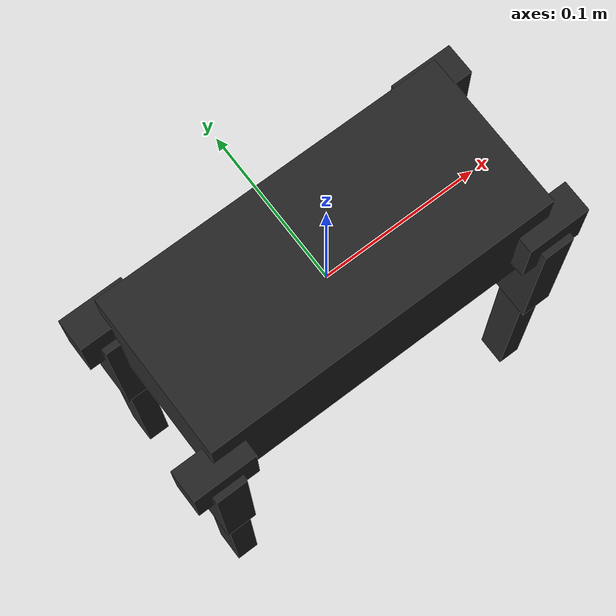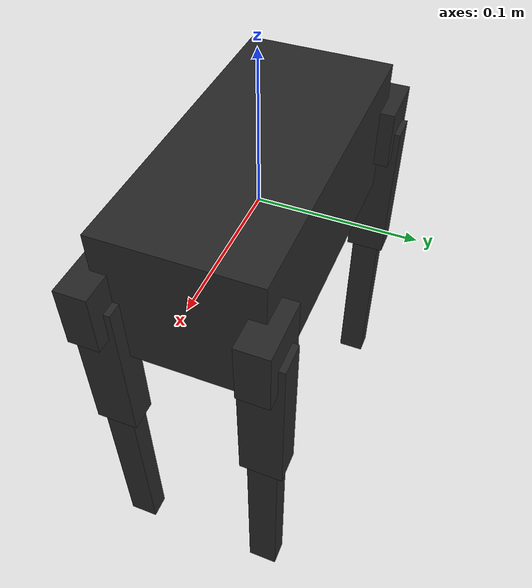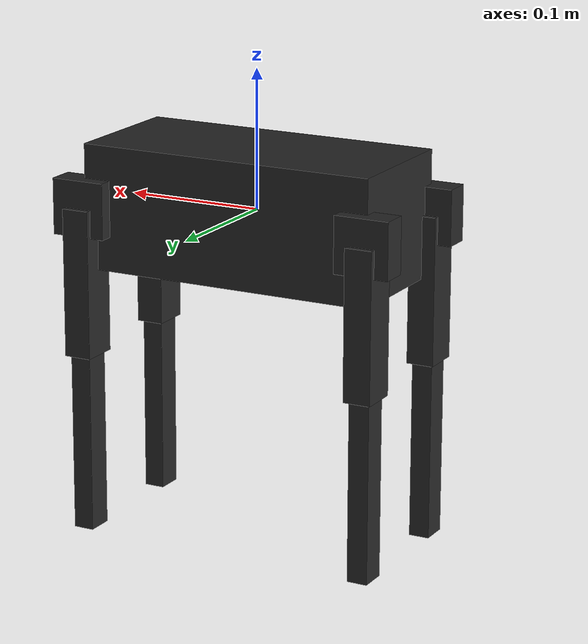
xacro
<?xml version="1.0"?>
<robot name="sih_quadruped" xmlns:xacro="http://ros.org/wiki/xacro">
    <xacro:include filename="$(find sih_quadruped)/urdf/properties.urdf.xacro" />
    <xacro:include filename="$(find sih_quadruped)/urdf/leg.urdf.xacro" />

    <link name="base_link">
        <xacro:box_inertial mass="${base_mass}" x="${base_x_length}" y="${base_y_length}" z="${base_z_length}" />
        <collision>
            <origin xyz="0 0 0" rpy="0 0 0" />
            <geometry><box size="${base_x_length} ${base_y_length} ${base_z_length}" /></geometry>
        </collision>
        <visual>
            <origin xyz="0 0 0" rpy="0 0 0" />
            <geometry><box size="${base_x_length} ${base_y_length} ${base_z_length}" /></geometry>
            <material name="black" />
        </visual>
    </link>
    <gazebo reference="base_link">
        <material>Gazebo/FlatBlack</material>
    </gazebo>

    <xacro:champ_leg leg="lf"/>
    <xacro:champ_leg leg="lh"/>
    <xacro:champ_leg leg="rf"/>
    <xacro:champ_leg leg="rh"/>

    <gazebo>
        <plugin name="p3d_base_controller" filename="libgazebo_ros_p3d.so">
            <ros>
                <argument>odom:=odom/ground_truth</argument>
            </ros>
            <body_name>base_link</body_name>
            <frame_name>world</frame_name>
            <update_rate>50.0</update_rate>
            <xyz_offset>0 0 0</xyz_offset>
            <rpy_offset>0 0 0</rpy_offset>
            <gaussian_noise>0.0</gaussian_noise>
        </plugin>
    </gazebo>

    <gazebo>
        <plugin filename="libgazebo_ros2_control.so" name="gazebo_ros2_control">
            <parameters>$(find sih_quadruped)/config/ros_control/ros_control.yaml</parameters>
        </plugin>
    </gazebo>
</robot>

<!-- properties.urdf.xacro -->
<robot xmlns:xacro="http://ros.org/wiki/xacro">

    <xacro:property name="base_to_hip_x" value="0.110" /> <!-- m, params.py BASE_TO_HIP_X = 110.0mm -->
    <xacro:property name="base_to_hip_y" value="0.050" /> <!-- m, params.py BASE_TO_HIP_Y = 50.0mm -->

    <xacro:property name="hip_to_upper_leg_x" value="0.0" /> <!-- m, PLACEHOLDER (zeroed for IK margin, see above), swap from leg_kinematics.json -->
    <xacro:property name="hip_to_upper_leg_y" value="0.0" /> <!-- m, PLACEHOLDER (zeroed for IK margin, see above), swap from leg_kinematics.json -->

    <xacro:property name="upper_leg_to_lower_leg_y" value="0.0" /> <!-- m, PLACEHOLDER (zeroed for IK margin, see above), swap from leg_kinematics.json -->
    <xacro:property name="upper_leg_to_lower_leg_z" value="0.1075" /> <!-- m, params.py THIGH_LENGTH = 107.5mm (V3 SPEC contract, NOT a placeholder) -->

    <xacro:property name="lower_leg_to_foot_z" value="0.130" /> <!-- m, params.py SHIN_LENGTH = 130.0mm (V3 SPEC contract, NOT a placeholder) -->

    <!-- Masses (draft, per the task spec). -->
    <xacro:property name="base_mass" value="1.45" />       <!-- kg, incl. 4 ab/ad servos, battery, Pi, LiDAR (task spec) -->
    <xacro:property name="hip_mass" value="0.10" />        <!-- kg, per hip/shoulder bracket + ab/ad servo (task spec) -->
    <xacro:property name="upper_leg_mass" value="0.11" />  <!-- kg, per upper leg (thigh) link (task spec) -->
    <xacro:property name="lower_leg_mass" value="0.04" />  <!-- kg, per lower leg (shin) link (task spec) -->

    <xacro:property name="base_x_length" value="0.220" />  <!-- m, 2*base_to_hip_x; footprint spans the 4 hip points -->
    <xacro:property name="base_y_length" value="0.100" />  <!-- m, 2*base_to_hip_y -->
    <xacro:property name="base_z_length" value="0.090" />  <!-- m, draft, within params.py BODY_MAX_BELOW_HIP(35mm)+LEG_MAX_Z(60mm) envelope -->

    <xacro:property name="hip_x_length" value="0.040" />   <!-- m, params.py SERVO_BODY_L (DS3225 case) -->
    <xacro:property name="hip_y_length" value="0.020" />   <!-- m, params.py SERVO_BODY_W (DS3225 case) -->
    <xacro:property name="hip_z_length" value="0.0405" />  <!-- m, params.py SERVO_BODY_H (DS3225 case) -->

    <xacro:property name="upper_leg_x_length" value="0.020" /> <!-- m, draft cross-section depth -->
    <xacro:property name="upper_leg_y_length" value="0.028" /> <!-- m, params.py LEG_W = SERVO_BODY_W(20)+2*WALL(4) -->
    <xacro:property name="upper_leg_z_length" value="${upper_leg_to_lower_leg_z}" /> <!-- m, = THIGH_LENGTH -->

    <xacro:property name="lower_leg_x_length" value="0.015" /> <!-- m, draft cross-section depth (tapers vs. upper leg) -->
    <xacro:property name="lower_leg_y_length" value="0.020" /> <!-- m, draft cross-section width -->
    <xacro:property name="lower_leg_z_length" value="${lower_leg_to_foot_z}" /> <!-- m, = SHIN_LENGTH -->

    <xacro:arg name="leg_effort_limit" default="2.4525" />
    <xacro:property name="leg_joint_effort" value="$(arg leg_effort_limit)" /> <!-- N.m, see above -->
    <xacro:property name="leg_joint_velocity" value="8.0552" /> <!-- rad/s, DS3225 @ 6.8V, see above -->

</robot>

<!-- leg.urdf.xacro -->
<robot xmlns:xacro="http://ros.org/wiki/xacro">

    <material name="black"><color rgba="0.15 0.15 0.15 1.0" /></material>

    <!-- Shared box-inertia macro (avoids repeating the (1/12)*m*(a^2+b^2) formula 3x per link). -->
    <xacro:macro name="box_inertial" params="mass x y z ox:=0 oy:=0 oz:=0">
        <inertial>
            <origin xyz="${ox} ${oy} ${oz}" rpy="0 0 0" />
            <mass value="${mass}" />
            <inertia ixx="${(1/12) * mass * (y*y + z*z)}" ixy="0.0" ixz="0.0"
                     iyy="${(1/12) * mass * (x*x + z*z)}" iyz="0.0"
                     izz="${(1/12) * mass * (x*x + y*y)}" />
        </inertial>
    </xacro:macro>

    <xacro:macro name="champ_leg" params="leg">

        <!-- Mirror rule (same convention as stock): front (+x) / hind (-x); left (+y) / right (-y). -->
        <xacro:if value="${leg == 'lf'}">
            <xacro:property name="base_to_hip_xyz" value="${base_to_hip_x} ${base_to_hip_y} 0" />
            <xacro:property name="hip_to_upper_leg_xyz" value="${hip_to_upper_leg_x} ${hip_to_upper_leg_y} 0" />
            <xacro:property name="upper_leg_to_lower_leg_xyz" value="0 ${upper_leg_to_lower_leg_y} -${upper_leg_to_lower_leg_z}" />
        </xacro:if>
        <xacro:if value="${leg == 'lh'}">
            <xacro:property name="base_to_hip_xyz" value="-${base_to_hip_x} ${base_to_hip_y} 0" />
            <xacro:property name="hip_to_upper_leg_xyz" value="-${hip_to_upper_leg_x} ${hip_to_upper_leg_y} 0" />
            <xacro:property name="upper_leg_to_lower_leg_xyz" value="0 ${upper_leg_to_lower_leg_y} -${upper_leg_to_lower_leg_z}" />
        </xacro:if>
        <xacro:if value="${leg == 'rf'}">
            <xacro:property name="base_to_hip_xyz" value="${base_to_hip_x} -${base_to_hip_y} 0" />
            <xacro:property name="hip_to_upper_leg_xyz" value="${hip_to_upper_leg_x} -${hip_to_upper_leg_y} 0" />
            <xacro:property name="upper_leg_to_lower_leg_xyz" value="0 -${upper_leg_to_lower_leg_y} -${upper_leg_to_lower_leg_z}" />
        </xacro:if>
        <xacro:if value="${leg == 'rh'}">
            <xacro:property name="base_to_hip_xyz" value="-${base_to_hip_x} -${base_to_hip_y} 0" />
            <xacro:property name="hip_to_upper_leg_xyz" value="-${hip_to_upper_leg_x} -${hip_to_upper_leg_y} 0" />
            <xacro:property name="upper_leg_to_lower_leg_xyz" value="0 -${upper_leg_to_lower_leg_y} -${upper_leg_to_lower_leg_z}" />
        </xacro:if>

        <link name="${leg}_hip_debug_link"/>

        <link name="${leg}_hip_link">
            <xacro:box_inertial mass="${hip_mass}" x="${hip_x_length}" y="${hip_y_length}" z="${hip_z_length}" />
            <collision>
                <origin xyz="0 0 0" rpy="0 0 0" />
                <geometry><box size="${hip_x_length} ${hip_y_length} ${hip_z_length}" /></geometry>
            </collision>
            <visual>
                <origin xyz="0 0 0" rpy="0 0 0" />
                <geometry><box size="${hip_x_length} ${hip_y_length} ${hip_z_length}" /></geometry>
                <material name="black" />
            </visual>
        </link>
        <gazebo reference="${leg}_hip_link">
            <material>Gazebo/FlatBlack</material>
        </gazebo>

        <link name="${leg}_upper_leg_link">
            <xacro:box_inertial mass="${upper_leg_mass}" x="${upper_leg_x_length}" y="${upper_leg_y_length}" z="${upper_leg_z_length}"
                                 ox="0" oy="${upper_leg_to_lower_leg_y/2}" oz="-${upper_leg_to_lower_leg_z/2}" />
            <collision>
                <origin xyz="0 ${upper_leg_to_lower_leg_y/2} -${upper_leg_to_lower_leg_z/2}" rpy="0 0 0" />
                <geometry><box size="${upper_leg_x_length} ${upper_leg_y_length} ${upper_leg_z_length}" /></geometry>
            </collision>
            <visual>
                <origin xyz="0 ${upper_leg_to_lower_leg_y/2} -${upper_leg_to_lower_leg_z/2}" rpy="0 0 0" />
                <geometry><box size="${upper_leg_x_length} ${upper_leg_y_length} ${upper_leg_z_length}" /></geometry>
                <material name="black" />
            </visual>
        </link>
        <gazebo reference="${leg}_upper_leg_link">
            <material>Gazebo/FlatBlack</material>
        </gazebo>

        <link name="${leg}_lower_leg_link">
            <xacro:box_inertial mass="${lower_leg_mass}" x="${lower_leg_x_length}" y="${lower_leg_y_length}" z="${lower_leg_z_length}"
                                 ox="0" oy="0" oz="-${lower_leg_to_foot_z/2}" />
            <collision>
                <origin xyz="0 0 -${lower_leg_to_foot_z/2}" rpy="0 0 0" />
                <geometry><box size="${lower_leg_x_length} ${lower_leg_y_length} ${lower_leg_z_length}" /></geometry>
            </collision>
            <visual>
                <origin xyz="0 0 -${lower_leg_to_foot_z/2}" rpy="0 0 0" />
                <geometry><box size="${lower_leg_x_length} ${lower_leg_y_length} ${lower_leg_z_length}" /></geometry>
                <material name="black" />
            </visual>
        </link>
        <gazebo reference="${leg}_lower_leg_link">
            <!-- Same foot-ground contact stiffness/friction as stock champ_description/urdf/leg.urdf.xacro -->
            <kp>10000000000.0</kp>
            <kd>100.0</kd>
            <mu1>0.8</mu1>
            <mu2>0.8</mu2>
            <minDepth>0.05</minDepth>
            <material>Gazebo/FlatBlack</material>
        </gazebo>

        <link name="${leg}_foot_link" />

        <joint name="${leg}_debug_joint" type="fixed">
            <parent link="base_link" />
            <child link="${leg}_hip_debug_link" />
            <origin xyz="${base_to_hip_xyz}" rpy="0 0 0" />
        </joint>

        <joint name="${leg}_hip_joint" type="revolute">
            <axis xyz="1 0 0" />
            <limit effort="${leg_joint_effort}" lower="-${pi}" upper="${pi}" velocity="${leg_joint_velocity}" />
            <parent link="base_link" />
            <child link="${leg}_hip_link" />
            <origin xyz="${base_to_hip_xyz}" rpy="0 0 0" />
        </joint>

        <joint name="${leg}_upper_leg_joint" type="revolute">
            <axis xyz="0 1 0" />
            <limit effort="${leg_joint_effort}" lower="-${pi}" upper="${pi}" velocity="${leg_joint_velocity}" />
            <parent link="${leg}_hip_link" />
            <child link="${leg}_upper_leg_link" />
            <origin xyz="${hip_to_upper_leg_xyz}" rpy="0 0 0" />
        </joint>

        <joint name="${leg}_lower_leg_joint" type="revolute">
            <axis xyz="0 1 0" />
            <limit effort="${leg_joint_effort}" lower="-${pi}" upper="${pi}" velocity="${leg_joint_velocity}" />
            <parent link="${leg}_upper_leg_link" />
            <child link="${leg}_lower_leg_link" />
            <origin xyz="${upper_leg_to_lower_leg_xyz}" rpy="0 0 0" />
        </joint>

        <joint name="${leg}_foot_joint" type="fixed">
            <parent link="${leg}_lower_leg_link" />
            <child link="${leg}_foot_link" />
            <origin xyz="0 0 -${lower_leg_to_foot_z}" rpy="0 0 0" />
        </joint>

        <ros2_control name="${leg}" type="system">
            <hardware>
                <plugin>gazebo_ros2_control/GazeboSystem</plugin>
            </hardware>
            <joint name="${leg}_hip_joint">
                <command_interface name="effort"/>
                <state_interface name="position"/>
                <state_interface name="velocity"/>
            </joint>
            <joint name="${leg}_upper_leg_joint">
                <command_interface name="effort"/>
                <state_interface name="position"/>
                <state_interface name="velocity"/>
            </joint>
            <joint name="${leg}_lower_leg_joint">
                <command_interface name="effort"/>
                <state_interface name="position"/>
                <state_interface name="velocity"/>
            </joint>
        </ros2_control>
    </xacro:macro>
</robot>
